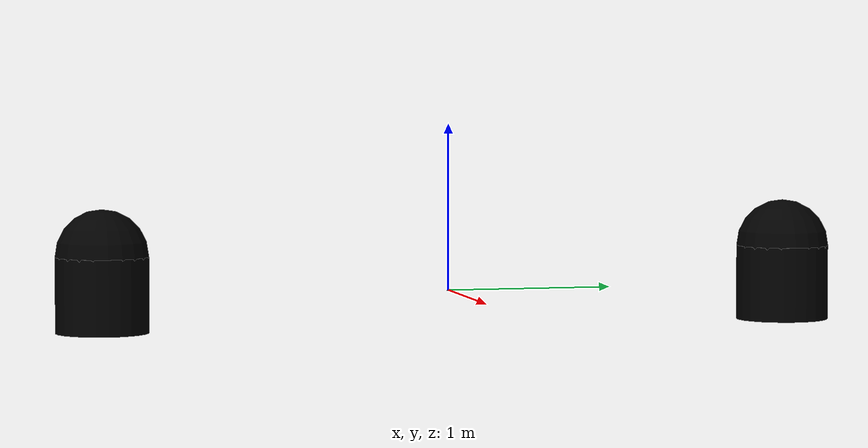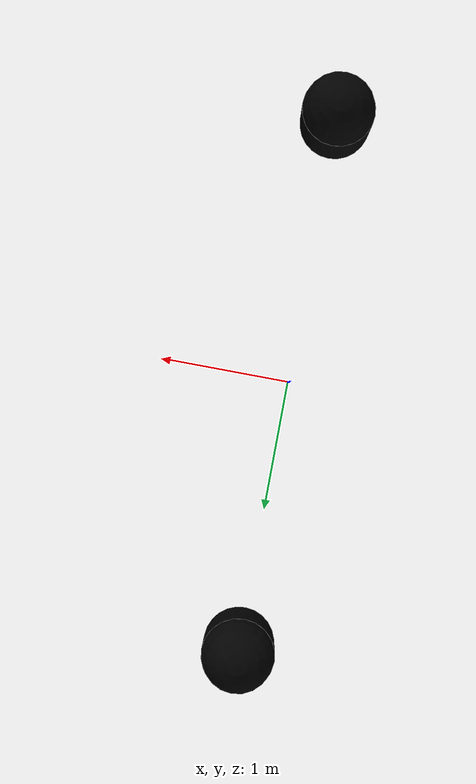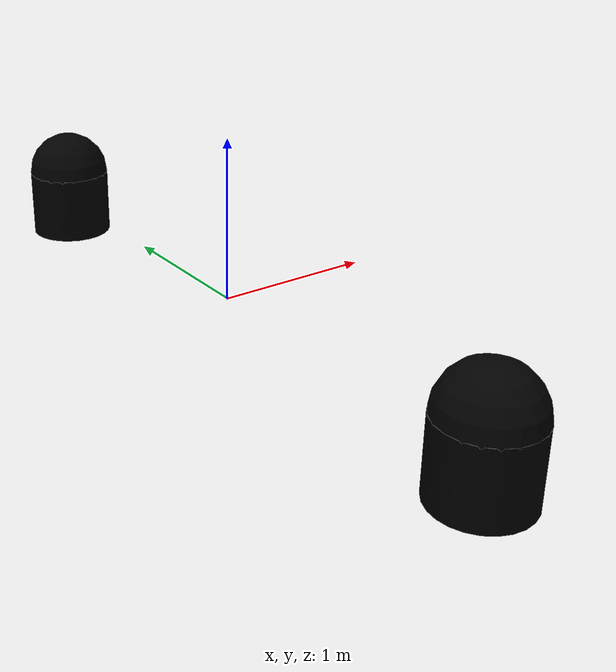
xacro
<robot xmlns:xacro="http://www.ros.org/wiki/xacro" name="robot">
    <!-- 基础链接 -->
    <xacro:macro name="base_link_macro">
        <link name="base_link">
            <visual>
                <origin xyz="0 0 0" rpy="0 0 0"/>
                <geometry>
                    <cylinder length="0.01" radius="0.01"/>
                </geometry>
                <material name="black">
                    <color rgba="0 0 0 1"/>
                </material>
            </visual>
            <collision>
                <origin xyz="0 0 0" rpy="0 0 0"/>
                <geometry>
                    <cylinder length="0.01" radius="0.01"/>
                </geometry>
            </collision>
            <inertial>
                <mass value="0.23"/>
                <inertia ixx="0.008448122" ixy="0.0" ixz="0.0" iyy="0.008448122" iyz="0.0" izz="0.009016"/>
            </inertial>
        </link>
    </xacro:macro>

    <!-- 激光传感器 -->
    <xacro:include filename="$(find gazebo_simulator)/urdf/entrance/laser-robosense-airy-180.urdf.xacro"/>

    <!-- 激光传感器调用 -->
    <xacro:base_link_macro/>
    <!-- 四角雷达安装方式 -->
    <!-- 底部对角 + 顶部对角 -->
    <xacro:robosense_airy name="robosense_airy_lm" parent_link="base_link" frame_id="base_link" xyz="0.0 -2.10 0.01" rpy="0 0 0"/>
    <xacro:robosense_airy name="robosense_airy_rm" parent_link="base_link" frame_id="base_link" xyz="0.0 2.10 0.01" rpy="0 0 3.1415926"/>

</robot>

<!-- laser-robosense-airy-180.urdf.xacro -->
<robot xmlns:xacro="http://www.ros.org/wiki/xacro">
    <!-- Robosense Airy激光雷达 -->
    <xacro:macro name="robosense_airy" params="name parent_link frame_id xyz rpy">
        <link name="${name}_link">
            <!-- Robosense Airy激光雷达几何外观-圆柱柱身 -->
            <visual>
                <origin xyz="0 0 0" rpy="0 0 0"/>
                <geometry>
                    <cylinder length="0.4534" radius="0.28"/>
                </geometry>
                <material name="black">
                    <color rgba="0 0 0 1"/>
                </material>
            </visual>
            <!-- Robosense Airy激光雷达几何外观-半球头部 -->
            <visual>
                <origin xyz="0 0 0.2267" rpy="0 0 0"/>
                <geometry>
                    <sphere radius="0.28"/>
                </geometry>
                <material name="black">
                    <color rgba="0 0 0 1"/>
                </material>
            </visual>
        </link>
        <!-- Robosense Airy激光雷达连接信息 -->
        <joint name="${name}_joint" type="fixed">
            <parent link="${parent_link}"/>
            <child link="${name}_link"/>
            <origin xyz="${xyz}" rpy="${rpy}"/>
        </joint>
        <!-- Robosense Airy激光雷达Gazebo仿真配置 -->
        <gazebo reference="${name}_link">
            <!-- Gazebo仿真中配置参数 -->
            <!-- 摩擦系数 刚度系数 阻尼系数 -->
            <mu1>20.0</mu1>
            <mu2>20.0</mu2>
            <kp>100000000</kp>
            <kd>1.0</kd>
            <!-- 传感器插件配置 -->
            <sensor type="ray" name="${name}_robosense_airy">
                <pose>0 0 0 0 0 0</pose>
                <always_on>true</always_on>
                <visualize>false</visualize>
                <update_rate>10.0</update_rate>
                <ray>
                    <scan>
                        <horizontal>
                            <samples>450</samples>
                            <resolution>1</resolution>
                            <min_angle>0</min_angle>
                            <max_angle>3.1415926</max_angle>
                        </horizontal>
                        <vertical>
                            <samples>96</samples>
                            <resolution>1</resolution>
                            <min_angle>0.0</min_angle>
                            <max_angle>1.5707963</max_angle>
                        </vertical>
                    </scan>
                    <range>
                        <min>0.10</min>
                        <max>30.0</max>
                        <resolution>0.01</resolution>
                    </range>
                    <noise>
                        <type>gaussian</type>
                        <mean>0.0</mean>
                        <stddev>0.0</stddev>
                    </noise>
                </ray>
                <plugin name="${name}_controller" filename="libgazebo_ros_velodyne_laser.so">
                    <ros>
                        <namespace>/</namespace>
                        <remapping>~/out:=/${name}_points/scan</remapping>
                    </ros>
                    <frame_name>${frame_id}</frame_name>
                    <min_range>0.10</min_range>
                    <max_range>30.0</max_range>
                    <gaussian_noise>0.0</gaussian_noise>
                    <organize_cloud>true</organize_cloud>    <!-- 是否生成组织好的点云（height = vertical samples） -->
                    <min_intensity>0.0</min_intensity>      <!-- 强度阈值，低于则可能被丢弃/裁剪 -->
                </plugin>
            </sensor>
        </gazebo>
    </xacro:macro>
</robot>
